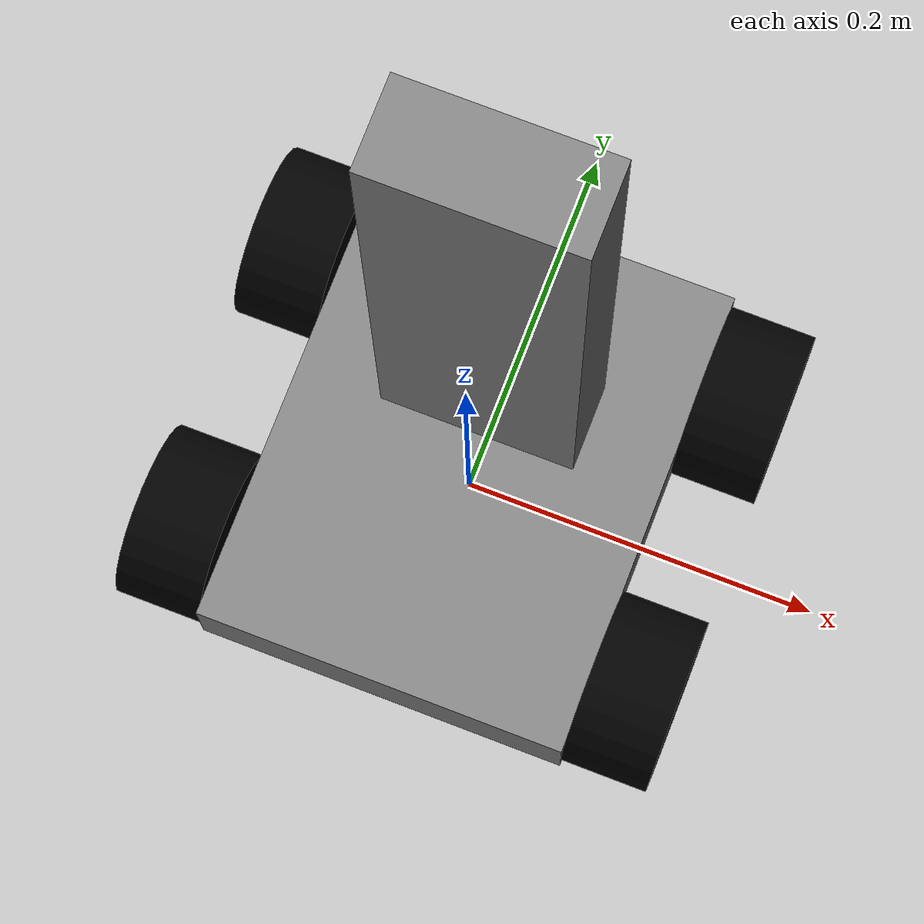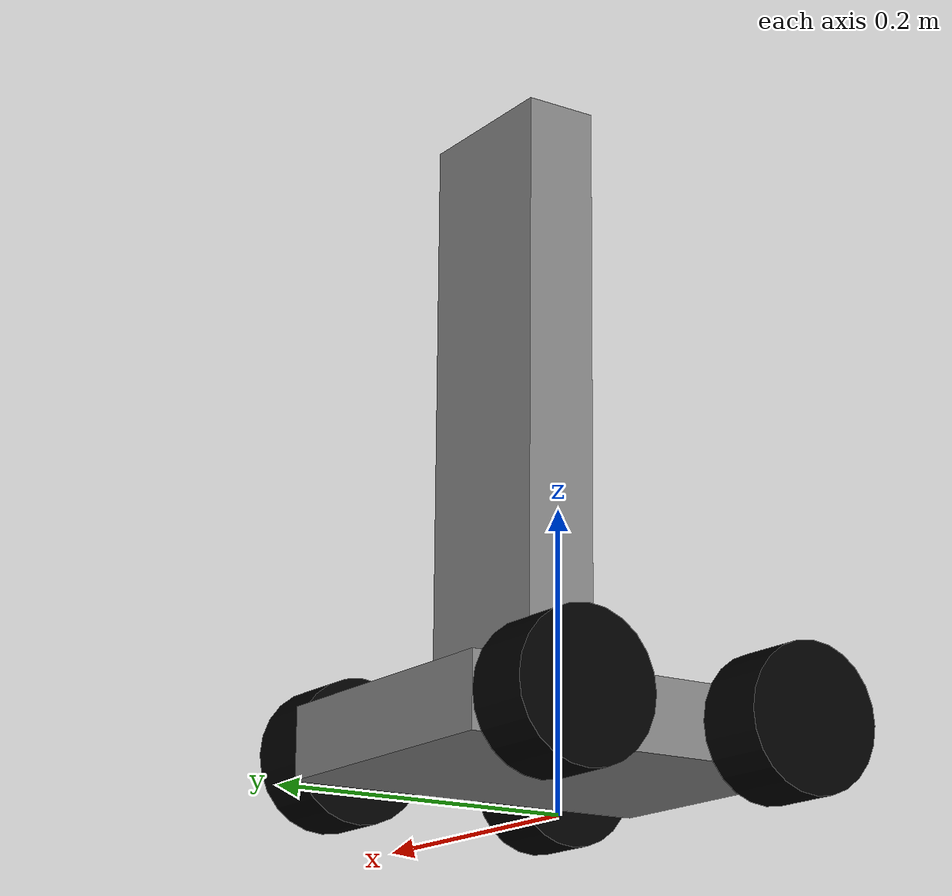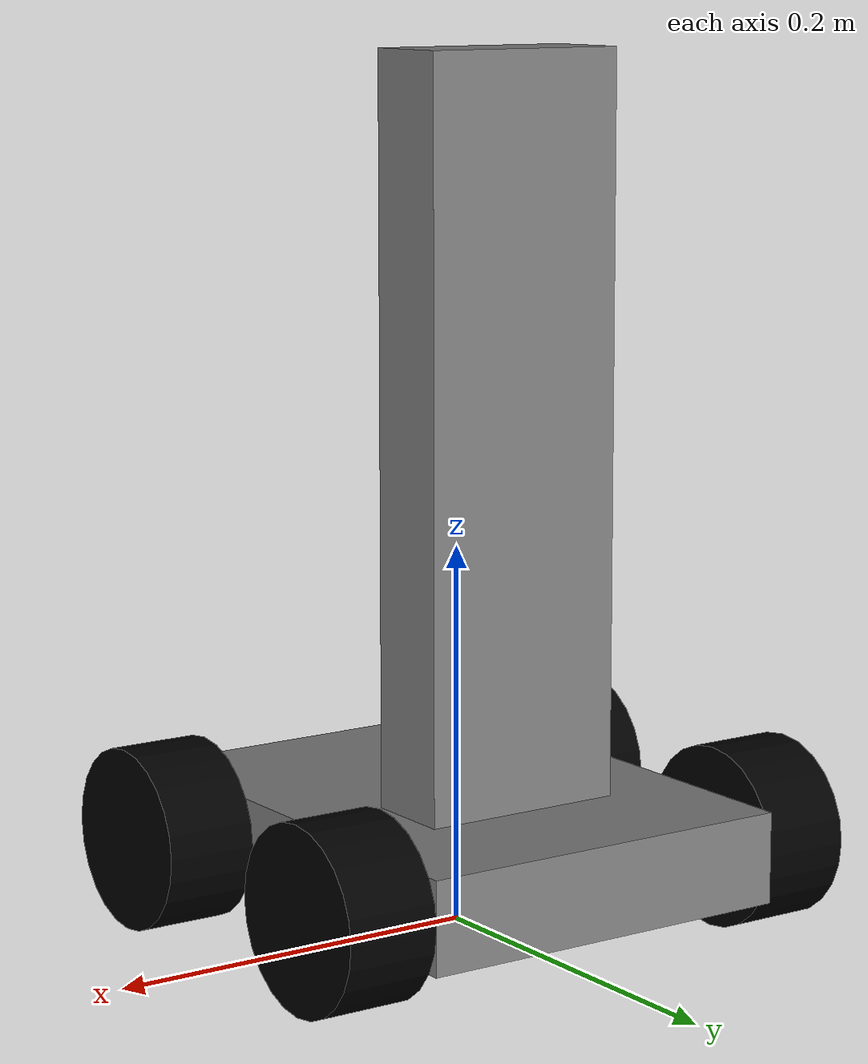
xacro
<?xml version="1.0"?>
<robot name ="myrobot" xmlns:xacro="http://ros.org/wiki/xacro">

  <!-- .XACRO principal do robô, descreve suas caracteristicas visuais (rodas, base, torre),
  importa o include de inercia e o arquivo de especificações do gazebo -->

  <xacro:include filename="include.xacro"/>

  <xacro:property name="wheel_radius" value="0.048" />
  <xacro:property name="wheel_length" value="0.038" />

  <xacro:property name="rad90" value="${90*pi/180}" />

  <!-- root link, on the ground just below the model origin -->

  <link name="base_link">
    <visual>
      <geometry>
        <box size="0.206 0.264 0.048"/>
      </geometry>
      <origin rpy="0 0 0" xyz="0 0 0.048"/>
      <material name="gray"/>
    </visual>

    <collision>
      <geometry>
        <box size="0.206 0.264 0.048"/>
      </geometry>
      <origin rpy="0 0 0" xyz="0 0 0.048"/>
    </collision>

    <xacro:inertial_box mass="3.35" x="0.206" y="0.264" z="0.048">
      <origin xyz="0 0 0.048" rpy="0 0 0"/>
    </xacro:inertial_box>

  </link>

  <link name="whellFR">
    <visual>
      <geometry>
        <cylinder radius="0.048" length="0.048"/>
      </geometry>
      <origin rpy="0 1.57075 0" xyz="0 0 0"/>
      <material name="black"/>
    </visual>

    <collision>
      <geometry>
        <cylinder radius="0.048" length="0.048"/>
      </geometry>
      <origin rpy="0 1.57075 0" xyz="0 0 0"/>
    </collision>

    <xacro:inertial_cylinder mass="0.207" length="${wheel_length}" radius="${wheel_radius}">
      <origin xyz="0 0 0" rpy="0 1.57075 0"/>
    </xacro:inertial_cylinder>
  </link>

  <joint name="base_to_FRwhell" type="fixed">
    <parent link="base_link"/>
    <child link="whellFR"/>
    <origin xyz="0.127 0.084 0.048"/>
  </joint>

  <link name="whellFL">
    <visual>
      <geometry>
        <cylinder radius="0.048" length="0.048"/>
      </geometry>
      <origin rpy="0 1.57075 0" xyz="0 0 0"/>
      <material name="black"/>
    </visual>

    <collision>
      <geometry>
        <cylinder radius="0.048" length="0.048"/>
      </geometry>
      <origin rpy="0 1.57075 0" xyz="0 0 0"/>
    </collision>

    <xacro:inertial_cylinder mass="0.207" length="${wheel_length}" radius="${wheel_radius}">
      <origin xyz="0 0 0" rpy="0 1.57075 0"/>
    </xacro:inertial_cylinder>
  </link>

  <joint name="base_to_FLwhell" type="fixed">
    <parent link="base_link"/>
    <child link="whellFL"/>
    <origin xyz="-0.127 0.084 0.048"/>
  </joint>

  <link name="whellBR">
    <visual>
      <geometry>
        <cylinder radius="0.048" length="0.048"/>
      </geometry>
      <origin rpy="0 1.57075 0" xyz="0 0 0"/>
      <material name="black"/>
    </visual>

    <collision>
      <geometry>
        <cylinder radius="0.048" length="0.048"/>
      </geometry>
      <origin rpy="0 1.57075 0" xyz="0 0 0"/>
    </collision>

    <xacro:inertial_cylinder mass="0.207" length="${wheel_length}" radius="${wheel_radius}">
      <origin xyz="0 0 0" rpy="0 1.57075 0"/>
    </xacro:inertial_cylinder>
  </link>

  <joint name="base_to_BRwhell" type="fixed">
    <parent link="base_link"/>
    <child link="whellBR"/>
    <origin xyz="0.127 -0.084 0.048"/>
  </joint>

  <link name="whellBL">
    <visual>
      <geometry>
        <cylinder radius="0.048" length="0.048"/>
      </geometry>
      <origin rpy="0 1.57075 0" xyz="0 0 0"/>
      <material name="black"/>
    </visual>

    <collision>
      <geometry>
        <cylinder radius="0.048" length="0.048"/>
      </geometry>
      <origin rpy="0 1.57075 0" xyz="0 0 0"/>
    </collision>

    <xacro:inertial_cylinder mass="0.207" length="${wheel_length}" radius="${wheel_radius}">
      <origin xyz="0 0 0" rpy="0 1.57075 0"/>
    </xacro:inertial_cylinder>
  </link>

  <joint name="base_to_BLwhell" type="fixed">
    <parent link="base_link"/>
    <child link="whellBL"/>
    <origin xyz="-0.127 -0.084 0.048"/>
  </joint>

  <link name="tower">
    <visual>
      <geometry>
        <box size="0.11 0.048 0.384"/>
      </geometry>
      <origin rpy="0 0 0" xyz="0 0 0.192"/>
      <material name="gray"/>
    </visual>

    <collision>
      <geometry>
        <box size="0.11 0.048 0.384"/>
      </geometry>
      <origin rpy="0 0 0" xyz="0 0 0.192"/>
    </collision>

    <xacro:inertial_box mass="0.506" x="0.11" y="0.048" z="0.384">
      <origin xyz="0 0 0.192" rpy="0 0 0"/>
    </xacro:inertial_box>

  </link>

  <joint name="base_to_tower" type="fixed">
    <parent link="base_link"/>
    <child link="tower"/>
    <origin xyz="0 0.036 0.072"/>
  </joint>

</robot>

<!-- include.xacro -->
<robot xmlns:xacro="http://www.ros.org/wiki/xacro" >

    <!-- Include que contém especificações de cor e formulas para calcular inércia do robô-->
    <!-- Specify some colours -->

    <material name="white">
        <color rgba="1 1 1 1"/>
    </material>

    <material name="orange">
        <color rgba="1 0.3 0.1 1"/>
    </material>

    <material name="blue">
        <color rgba="0.2 0.2 1 1"/>
    </material>

    <material name="gray">
        <color rgba="0.5 0.5 0.5 1"/>
    </material>

    <material name="black">
        <color rgba="0 0 0 1"/>
    </material>

    <material name="red">
        <color rgba="1 0 0 1"/>
    </material>

    <material name="yellow">
        <color rgba="1 1 0 1"/>
    </material>

    <material name="green">
        <color rgba="0 1 0 1"/>
    </material>

    <!-- Specify some standard inertial calculations https://en.wikipedia.org/wiki/List_of_moments_of_inertia -->
    <!-- These make use of xacro's mathematical functionality -->

    <xacro:macro name="inertial_sphere" params="mass radius *origin">
        <inertial>
            <xacro:insert_block name="origin"/>
            <mass value="${mass}" />
            <inertia ixx="${(2/5) * mass * (radius*radius)}" ixy="0.0" ixz="0.0"
                    iyy="${(2/5) * mass * (radius*radius)}" iyz="0.0"
                    izz="${(2/5) * mass * (radius*radius)}" />
        </inertial>
    </xacro:macro>

    <xacro:macro name="inertial_box" params="mass x y z *origin">
        <inertial>
            <xacro:insert_block name="origin"/>
            <mass value="${mass}" />
            <inertia ixx="${(1/12) * mass * (y*y+z*z)}" ixy="0.0" ixz="0.0"
                    iyy="${(1/12) * mass * (x*x+z*z)}" iyz="0.0"
                    izz="${(1/12) * mass * (x*x+y*y)}" />
        </inertial>
    </xacro:macro>

    <xacro:macro name="inertial_cylinder" params="mass length radius *origin">
        <inertial>
            <xacro:insert_block name="origin"/>
            <mass value="${mass}" />
            <inertia ixx="${(1/12) * mass * (3*radius*radius + length*length)}" ixy="0.0" ixz="0.0"
                    iyy="${(1/12) * mass * (3*radius*radius + length*length)}" iyz="0.0"
                    izz="${(1/2) * mass * (radius*radius)}" />
        </inertial>
    </xacro:macro>

</robot>
